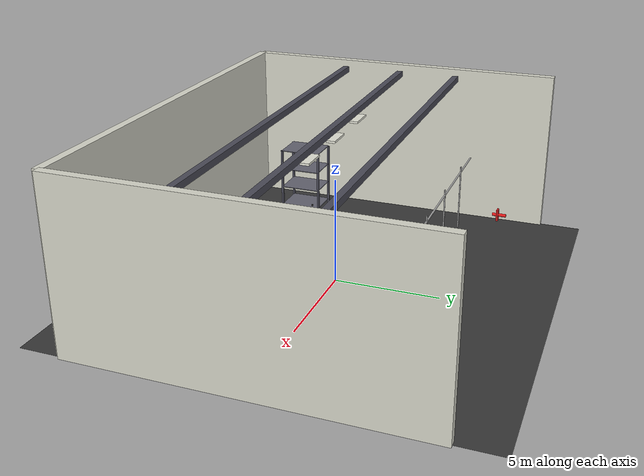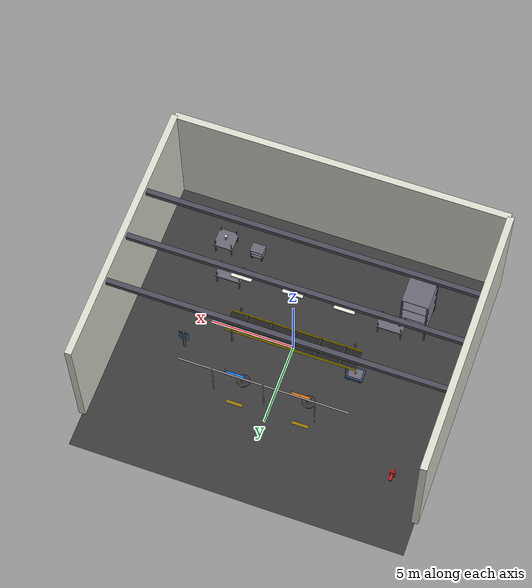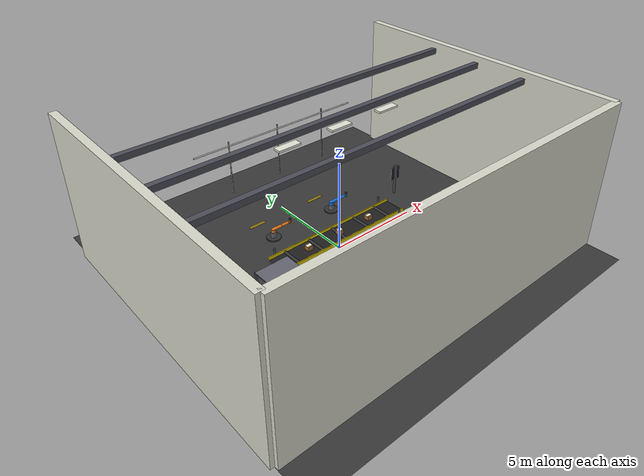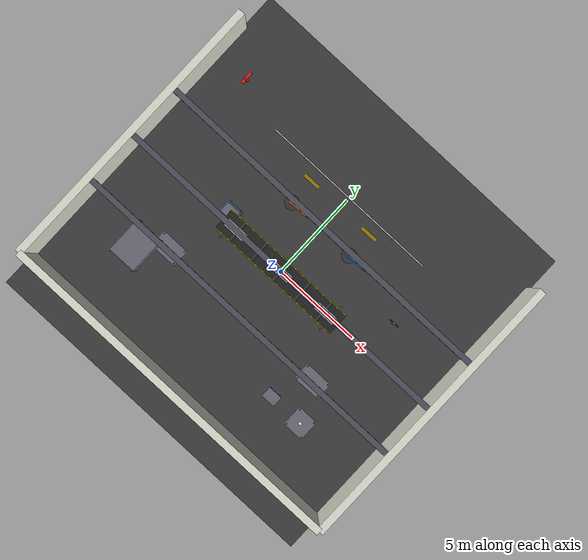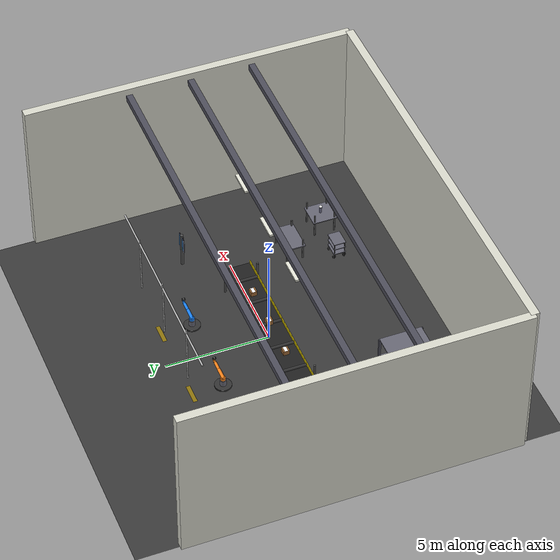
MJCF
<mujoco model="industrial_workshop">
  <compiler angle="radian" coordinate="local" inertiafromgeom="true"/>

  <option timestep="0.002" gravity="0 0 -9.81" iterations="50" solver="Newton" tolerance="1e-10"/>

  <size njmax="500" nconmax="100" nstack="600000"/>

  <visual>
    <map force="0.1" zfar="50"/>
    <rgba haze="0.15 0.25 0.35 1"/>
    <quality shadowsize="4096"/>
    <global offwidth="800" offheight="800"/>
  </visual>

  <asset>
    <!-- 纹理定义 -->
    <texture name="floor_texture" type="2d" builtin="checker" rgb1="0.2 0.2 0.2" rgb2="0.25 0.25 0.25" width="512" height="512" mark="cross" markrgb="0.8 0.8 0.8"/>
    <texture name="metal_texture" type="2d" builtin="flat" rgb1="0.4 0.4 0.45" width="512" height="512"/>
    <texture name="wall_texture" type="2d" builtin="flat" rgb1="0.85 0.85 0.8" width="512" height="512"/>
    <texture name="conveyor_texture" type="2d" builtin="checker" rgb1="0.1 0.1 0.1" rgb2="0.15 0.15 0.15" width="512" height="512"/>
    <texture name="robot_texture" type="2d" builtin="flat" rgb1="0.95 0.5 0.1" width="256" height="256"/>
    <texture name="warning_texture" type="2d" builtin="checker" rgb1="1 0.8 0" rgb2="0.1 0.1 0.1" width="128" height="128"/>
    <texture name="box_texture" type="2d" builtin="flat" rgb1="0.6 0.4 0.2" width="256" height="256"/>

    <!-- 材质定义 -->
    <material name="floor_material" texture="floor_texture" texrepeat="10 10" specular="0.3" shininess="0.5" reflectance="0.1"/>
    <material name="metal_material" texture="metal_texture" specular="0.8" shininess="0.7" reflectance="0.3"/>
    <material name="wall_material" texture="wall_texture" specular="0.1" shininess="0.1" reflectance="0"/>
    <material name="conveyor_material" texture="conveyor_texture" texrepeat="20 2" specular="0.2" shininess="0.3"/>
    <material name="robot_material" texture="robot_texture" specular="0.6" shininess="0.5" reflectance="0.2"/>
    <material name="warning_material" texture="warning_texture" texrepeat="2 2" specular="0.1" shininess="0.1"/>
    <material name="box_material" texture="box_texture" specular="0.2" shininess="0.2"/>
  </asset>

  <default>
    <joint limited="true" damping="0.5" armature="0.1"/>
    <geom contype="1" conaffinity="1" friction="1 0.5 0.5" density="1000" margin="0.001"/>
    <motor ctrllimited="true" ctrlrange="-1 1"/>
    <position ctrllimited="true"/>
  </default>

  <worldbody>
    <!-- 照明设置 -->
    <light directional="true" pos="0 0 10" dir="0 0 -1" diffuse="0.8 0.8 0.8" specular="0.3 0.3 0.3"/>
    <light directional="true" pos="5 5 8" dir="-1 -1 -2" diffuse="0.6 0.6 0.6" specular="0.2 0.2 0.2"/>
    <light directional="true" pos="-5 5 8" dir="1 -1 -2" diffuse="0.6 0.6 0.6" specular="0.2 0.2 0.2"/>

    <!-- 地面 -->
    <geom name="floor" type="plane" size="10 10 0.1" pos="0 0 0" material="floor_material" condim="3"/>

    <!-- 车间墙壁 -->
    <geom name="wall_back" type="box" size="10 0.2 4" pos="0 -8 4" material="wall_material"/>
    <geom name="wall_left" type="box" size="0.2 8 4" pos="-10 0 4" material="wall_material"/>
    <geom name="wall_right" type="box" size="0.2 8 4" pos="10 0 4" material="wall_material"/>

    <!-- 天花板钢梁 -->
    <geom name="ceiling_beam_1" type="box" size="10 0.15 0.15" pos="0 -3 7.5" rgba="0.3 0.3 0.35 1"/>
    <geom name="ceiling_beam_2" type="box" size="10 0.15 0.15" pos="0 0 7.5" rgba="0.3 0.3 0.35 1"/>
    <geom name="ceiling_beam_3" type="box" size="10 0.15 0.15" pos="0 3 7.5" rgba="0.3 0.3 0.35 1"/>

    <!-- ========== 主流水线系统 ========== -->
    <body name="conveyor_base" pos="0 0 0.85">
      <!-- 流水线支架 -->
      <geom name="conveyor_leg_1" type="cylinder" size="0.05 0.85" pos="-3.5 -0.8 -0.425" rgba="0.3 0.3 0.3 1"/>
      <geom name="conveyor_leg_2" type="cylinder" size="0.05 0.85" pos="-3.5 0.8 -0.425" rgba="0.3 0.3 0.3 1"/>
      <geom name="conveyor_leg_3" type="cylinder" size="0.05 0.85" pos="3.5 -0.8 -0.425" rgba="0.3 0.3 0.3 1"/>
      <geom name="conveyor_leg_4" type="cylinder" size="0.05 0.85" pos="3.5 0.8 -0.425" rgba="0.3 0.3 0.3 1"/>

      <!-- 流水线传送带 -->
      <geom name="conveyor_belt" type="box" size="4 0.6 0.05" pos="0 0 0" material="conveyor_material"/>

      <!-- 流水线侧边护栏 -->
      <geom name="conveyor_rail_1" type="box" size="4 0.02 0.1" pos="0 0.62 0.1" rgba="0.9 0.8 0 1"/>
      <geom name="conveyor_rail_2" type="box" size="4 0.02 0.1" pos="0 -0.62 0.1" rgba="0.9 0.8 0 1"/>

      <!-- 流水线滚轮 -->
      <geom name="conveyor_roller_1" type="cylinder" size="0.08 0.6" pos="-3 0 0.05" euler="1.5708 0 0" rgba="0.2 0.2 0.2 1"/>
      <geom name="conveyor_roller_2" type="cylinder" size="0.08 0.6" pos="-1.5 0 0.05" euler="1.5708 0 0" rgba="0.2 0.2 0.2 1"/>
      <geom name="conveyor_roller_3" type="cylinder" size="0.08 0.6" pos="0 0 0.05" euler="1.5708 0 0" rgba="0.2 0.2 0.2 1"/>
      <geom name="conveyor_roller_4" type="cylinder" size="0.08 0.6" pos="1.5 0 0.05" euler="1.5708 0 0" rgba="0.2 0.2 0.2 1"/>
      <geom name="conveyor_roller_5" type="cylinder" size="0.08 0.6" pos="3 0 0.05" euler="1.5708 0 0" rgba="0.2 0.2 0.2 1"/>
    </body>

    <!-- ========== 6轴工业机械臂 ========== -->
    <body name="robot_base" pos="-2 3 0">
      <!-- 机器人底座 -->
      <geom name="robot_platform" type="cylinder" size="0.4 0.05" rgba="0.2 0.2 0.2 1" mass="50"/>
      <geom name="robot_base_geom" type="cylinder" size="0.15 0.2" pos="0 0 0.15" material="metal_material" mass="20"/>

      <!-- 关节1: 基座旋转 -->
      <body name="link1" pos="0 0 0.35">
        <joint name="joint1" type="hinge" axis="0 0 1" range="-3.14159 3.14159" damping="2"/>
        <geom name="link1_geom" type="cylinder" size="0.12 0.15" rgba="0.95 0.5 0.1 1" mass="15"/>

        <!-- 关节2: 肩部 -->
        <body name="link2" pos="0 0 0.15" euler="0 0 0">
          <joint name="joint2" type="hinge" axis="0 1 0" range="-1.91986 1.91986" damping="2"/>
          <geom name="link2_geom" type="capsule" fromto="0 0 0 0.5 0 0" size="0.08" material="robot_material" mass="12"/>

          <!-- 关节3: 肘部 -->
          <body name="link3" pos="0.5 0 0">
            <joint name="joint3" type="hinge" axis="0 1 0" range="-1.91986 1.91986" damping="1.5"/>
            <geom name="link3_geom" type="capsule" fromto="0 0 0 0.45 0 0" size="0.07" rgba="0.95 0.5 0.1 1" mass="10"/>

            <!-- 关节4: 手腕旋转1 -->
            <body name="link4" pos="0.45 0 0">
              <joint name="joint4" type="hinge" axis="1 0 0" range="-3.14159 3.14159" damping="1"/>
              <geom name="link4_geom" type="capsule" fromto="0 0 0 0.15 0 0" size="0.055" material="robot_material" mass="5"/>

              <!-- 关节5: 手腕旋转2 -->
              <body name="link5" pos="0.15 0 0">
                <joint name="joint5" type="hinge" axis="0 1 0" range="-1.91986 1.91986" damping="1"/>
                <geom name="link5_geom" type="cylinder" size="0.05 0.08" rgba="0.95 0.5 0.1 1" mass="3"/>

                <!-- 关节6: 手腕旋转3 -->
                <body name="link6" pos="0 0 0.08">
                  <joint name="joint6" type="hinge" axis="0 0 1" range="-3.14159 3.14159" damping="0.5"/>
                  <geom name="link6_geom" type="cylinder" size="0.045 0.03" material="robot_material" mass="2"/>

                  <!-- 末端执行器 - 夹爪 -->
                  <body name="gripper_base" pos="0 0 0.08">
                    <geom name="gripper_base_geom" type="box" size="0.06 0.04 0.03" rgba="0.3 0.3 0.3 1" mass="1"/>

                    <!-- 左夹爪 -->
                    <body name="left_finger" pos="0 0.04 0">
                      <joint name="gripper_left" type="slide" axis="0 1 0" range="0 0.04" damping="0.3"/>
                      <geom name="left_finger_geom" type="box" size="0.04 0.01 0.05" pos="0 0.02 0" rgba="0.2 0.2 0.2 1" mass="0.3"/>
                      <geom name="left_finger_tip" type="box" size="0.04 0.005 0.02" pos="0 0.035 -0.04" rgba="0.4 0.4 0.4 1"/>
                    </body>

                    <!-- 右夹爪 -->
                    <body name="right_finger" pos="0 -0.04 0">
                      <joint name="gripper_right" type="slide" axis="0 -1 0" range="0 0.04" damping="0.3"/>
                      <geom name="right_finger_geom" type="box" size="0.04 0.01 0.05" pos="0 -0.02 0" rgba="0.2 0.2 0.2 1" mass="0.3"/>
                      <geom name="right_finger_tip" type="box" size="0.04 0.005 0.02" pos="0 -0.035 -0.04" rgba="0.4 0.4 0.4 1"/>
                    </body>
                  </body>
                </body>
              </body>
            </body>
          </body>
        </body>
      </body>
    </body>

    <!-- ========== 第二台机械臂 ========== -->
    <body name="robot2_base" pos="2 3 0">
      <geom name="robot2_platform" type="cylinder" size="0.4 0.05" rgba="0.2 0.2 0.2 1" mass="50"/>
      <geom name="robot2_base_geom" type="cylinder" size="0.15 0.2" pos="0 0 0.15" material="metal_material" mass="20"/>

      <body name="robot2_link1" pos="0 0 0.35">
        <joint name="robot2_joint1" type="hinge" axis="0 0 1" range="-3.14159 3.14159" damping="2"/>
        <geom name="robot2_link1_geom" type="cylinder" size="0.12 0.15" rgba="0.1 0.5 0.95 1" mass="15"/>

        <body name="robot2_link2" pos="0 0 0.15">
          <joint name="robot2_joint2" type="hinge" axis="0 1 0" range="-1.91986 1.91986" damping="2"/>
          <geom name="robot2_link2_geom" type="capsule" fromto="0 0 0 0.5 0 0" size="0.08" rgba="0.1 0.5 0.95 1" mass="12"/>

          <body name="robot2_link3" pos="0.5 0 0">
            <joint name="robot2_joint3" type="hinge" axis="0 1 0" range="-1.91986 1.91986" damping="1.5"/>
            <geom name="robot2_link3_geom" type="capsule" fromto="0 0 0 0.45 0 0" size="0.07" rgba="0.1 0.5 0.95 1" mass="10"/>

            <body name="robot2_link4" pos="0.45 0 0">
              <joint name="robot2_joint4" type="hinge" axis="1 0 0" range="-3.14159 3.14159" damping="1"/>
              <geom name="robot2_link4_geom" type="capsule" fromto="0 0 0 0.15 0 0" size="0.055" rgba="0.1 0.5 0.95 1" mass="5"/>

              <body name="robot2_link5" pos="0.15 0 0">
                <joint name="robot2_joint5" type="hinge" axis="0 1 0" range="-1.91986 1.91986" damping="1"/>
                <geom name="robot2_link5_geom" type="cylinder" size="0.05 0.08" rgba="0.1 0.5 0.95 1" mass="3"/>

                <body name="robot2_link6" pos="0 0 0.08">
                  <joint name="robot2_joint6" type="hinge" axis="0 0 1" range="-3.14159 3.14159" damping="0.5"/>
                  <geom name="robot2_link6_geom" type="cylinder" size="0.045 0.03" rgba="0.1 0.5 0.95 1" mass="2"/>

                  <body name="robot2_gripper_base" pos="0 0 0.08">
                    <geom name="robot2_gripper_base_geom" type="box" size="0.06 0.04 0.03" rgba="0.3 0.3 0.3 1" mass="1"/>

                    <body name="robot2_left_finger" pos="0 0.04 0">
                      <joint name="robot2_gripper_left" type="slide" axis="0 1 0" range="0 0.04" damping="0.3"/>
                      <geom name="robot2_left_finger_geom" type="box" size="0.04 0.01 0.05" pos="0 0.02 0" rgba="0.2 0.2 0.2 1" mass="0.3"/>
                      <geom name="robot2_left_finger_tip" type="box" size="0.04 0.005 0.02" pos="0 0.035 -0.04" rgba="0.4 0.4 0.4 1"/>
                    </body>

                    <body name="robot2_right_finger" pos="0 -0.04 0">
                      <joint name="robot2_gripper_right" type="slide" axis="0 -1 0" range="0 0.04" damping="0.3"/>
                      <geom name="robot2_right_finger_geom" type="box" size="0.04 0.01 0.05" pos="0 -0.02 0" rgba="0.2 0.2 0.2 1" mass="0.3"/>
                      <geom name="robot2_right_finger_tip" type="box" size="0.04 0.005 0.02" pos="0 -0.035 -0.04" rgba="0.4 0.4 0.4 1"/>
                    </body>
                  </body>
                </body>
              </body>
            </body>
          </body>
        </body>
      </body>
    </body>

    <!-- ========== 工作台 ========== -->
    <body name="worktable_1" pos="-5 -3 0">
      <geom name="worktable1_leg1" type="cylinder" size="0.04 0.75" pos="-0.7 -0.4 0.375" rgba="0.3 0.3 0.3 1"/>
      <geom name="worktable1_leg2" type="cylinder" size="0.04 0.75" pos="-0.7 0.4 0.375" rgba="0.3 0.3 0.3 1"/>
      <geom name="worktable1_leg3" type="cylinder" size="0.04 0.75" pos="0.7 -0.4 0.375" rgba="0.3 0.3 0.3 1"/>
      <geom name="worktable1_leg4" type="cylinder" size="0.04 0.75" pos="0.7 0.4 0.375" rgba="0.3 0.3 0.3 1"/>
      <geom name="worktable1_top" type="box" size="0.8 0.5 0.03" pos="0 0 0.78" material="metal_material"/>
    </body>

    <body name="worktable_2" pos="5 -3 0">
      <geom name="worktable2_leg1" type="cylinder" size="0.04 0.75" pos="-0.7 -0.4 0.375" rgba="0.3 0.3 0.3 1"/>
      <geom name="worktable2_leg2" type="cylinder" size="0.04 0.75" pos="-0.7 0.4 0.375" rgba="0.3 0.3 0.3 1"/>
      <geom name="worktable2_leg3" type="cylinder" size="0.04 0.75" pos="0.7 -0.4 0.375" rgba="0.3 0.3 0.3 1"/>
      <geom name="worktable2_leg4" type="cylinder" size="0.04 0.75" pos="0.7 0.4 0.375" rgba="0.3 0.3 0.3 1"/>
      <geom name="worktable2_top" type="box" size="0.8 0.5 0.03" pos="0 0 0.78" material="metal_material"/>
    </body>

    <!-- ========== 货架系统 ========== -->
    <body name="storage_rack" pos="-7 -5 0">
      <!-- 货架立柱 -->
      <geom name="rack_post1" type="box" size="0.05 0.05 2" pos="0 0 2" rgba="0.3 0.3 0.35 1"/>
      <geom name="rack_post2" type="box" size="0.05 0.05 2" pos="0 2 2" rgba="0.3 0.3 0.35 1"/>
      <geom name="rack_post3" type="box" size="0.05 0.05 2" pos="1.5 0 2" rgba="0.3 0.3 0.35 1"/>
      <geom name="rack_post4" type="box" size="0.05 0.05 2" pos="1.5 2 2" rgba="0.3 0.3 0.35 1"/>

      <!-- 货架层板 -->
      <geom name="rack_shelf1" type="box" size="0.8 1 0.02" pos="0.75 1 1" material="metal_material"/>
      <geom name="rack_shelf2" type="box" size="0.8 1 0.02" pos="0.75 1 2" material="metal_material"/>
      <geom name="rack_shelf3" type="box" size="0.8 1 0.02" pos="0.75 1 3" material="metal_material"/>
      <geom name="rack_shelf4" type="box" size="0.8 1 0.02" pos="0.75 1 4" material="metal_material"/>
    </body>

    <!-- ========== 流水线上的物料箱 ========== -->
    <body name="box1" pos="-2 0 1.05">
      <freejoint/>
      <geom name="box1_geom" type="box" size="0.15 0.15 0.12" material="box_material" mass="2"/>
      <geom name="box1_label" type="box" size="0.151 0.08 0.001" pos="0 0 0.121" rgba="1 1 1 1"/>
    </body>

    <body name="box2" pos="0 0 1.05">
      <freejoint/>
      <geom name="box2_geom" type="box" size="0.15 0.15 0.12" material="box_material" mass="2"/>
      <geom name="box2_label" type="box" size="0.151 0.08 0.001" pos="0 0 0.121" rgba="1 1 1 1"/>
    </body>

    <body name="box3" pos="2 0 1.05">
      <freejoint/>
      <geom name="box3_geom" type="box" size="0.15 0.15 0.12" material="box_material" mass="2"/>
      <geom name="box3_label" type="box" size="0.151 0.08 0.001" pos="0 0 0.121" rgba="1 1 1 1"/>
    </body>

    <!-- ========== 安全警示标识 ========== -->
    <geom name="warning_strip_1" type="box" size="0.5 0.1 0.001" pos="-2 4.5 0.001" material="warning_material"/>
    <geom name="warning_strip_2" type="box" size="0.5 0.1 0.001" pos="2 4.5 0.001" material="warning_material"/>

    <!-- ========== 控制面板 ========== -->
    <body name="control_panel" pos="6 2 0">
      <geom name="panel_stand" type="cylinder" size="0.08 1.2" pos="0 0 0.6" rgba="0.3 0.3 0.3 1"/>
      <geom name="panel_screen" type="box" size="0.3 0.02 0.4" pos="0 0 1.3" rgba="0.1 0.1 0.15 1"/>
      <geom name="panel_display" type="box" size="0.28 0.01 0.35" pos="0 0.021 1.32" rgba="0.2 0.4 0.6 1"/>
      <geom name="panel_button1" type="cylinder" size="0.02 0.01" pos="-0.1 0.03 1" rgba="0 1 0 1" euler="1.5708 0 0"/>
      <geom name="panel_button2" type="cylinder" size="0.02 0.01" pos="0 0.03 1" rgba="1 1 0 1" euler="1.5708 0 0"/>
      <geom name="panel_button3" type="cylinder" size="0.02 0.01" pos="0.1 0.03 1" rgba="1 0 0 1" euler="1.5708 0 0"/>
    </body>

    <!-- ========== 工具车 ========== -->
    <body name="tool_cart" pos="4 -5 0">
      <!-- 车轮 -->
      <geom name="cart_wheel1" type="cylinder" size="0.08 0.03" pos="-0.3 -0.25 0.08" rgba="0.2 0.2 0.2 1" euler="0 1.5708 0"/>
      <geom name="cart_wheel2" type="cylinder" size="0.08 0.03" pos="-0.3 0.25 0.08" rgba="0.2 0.2 0.2 1" euler="0 1.5708 0"/>
      <geom name="cart_wheel3" type="cylinder" size="0.08 0.03" pos="0.3 -0.25 0.08" rgba="0.2 0.2 0.2 1" euler="0 1.5708 0"/>
      <geom name="cart_wheel4" type="cylinder" size="0.08 0.03" pos="0.3 0.25 0.08" rgba="0.2 0.2 0.2 1" euler="0 1.5708 0"/>

      <!-- 车体 -->
      <geom name="cart_shelf1" type="box" size="0.4 0.3 0.02" pos="0 0 0.3" material="metal_material"/>
      <geom name="cart_shelf2" type="box" size="0.4 0.3 0.02" pos="0 0 0.6" material="metal_material"/>
      <geom name="cart_shelf3" type="box" size="0.4 0.3 0.02" pos="0 0 0.9" material="metal_material"/>

      <!-- 车体支柱 -->
      <geom name="cart_post1" type="cylinder" size="0.02 0.45" pos="-0.35 -0.25 0.45" rgba="0.3 0.3 0.3 1"/>
      <geom name="cart_post2" type="cylinder" size="0.02 0.45" pos="-0.35 0.25 0.45" rgba="0.3 0.3 0.3 1"/>
      <geom name="cart_post3" type="cylinder" size="0.02 0.45" pos="0.35 -0.25 0.45" rgba="0.3 0.3 0.3 1"/>
      <geom name="cart_post4" type="cylinder" size="0.02 0.45" pos="0.35 0.25 0.45" rgba="0.3 0.3 0.3 1"/>

      <!-- 工具车上的工具 -->
      <geom name="tool1" type="cylinder" size="0.02 0.1" pos="-0.15 0 0.35" rgba="0.6 0.6 0.6 1"/>
      <geom name="tool2" type="box" size="0.08 0.04 0.02" pos="0 0 0.35" rgba="0.7 0.5 0.2 1"/>
      <geom name="tool3" type="cylinder" size="0.015 0.08" pos="0.15 0 0.35" rgba="0.5 0.5 0.5 1"/>
    </body>

    <!-- ========== AGV小车 ========== -->
    <body name="agv_vehicle" pos="-4 0.5 0">
      <!-- AGV底盘 -->
      <geom name="agv_body" type="box" size="0.5 0.4 0.1" pos="0 0 0.15" rgba="0.2 0.3 0.4 1" mass="30"/>

      <!-- AGV轮子 -->
      <geom name="agv_wheel1" type="cylinder" size="0.1 0.04" pos="-0.35 -0.35 0.1" rgba="0.1 0.1 0.1 1" euler="0 1.5708 0"/>
      <geom name="agv_wheel2" type="cylinder" size="0.1 0.04" pos="-0.35 0.35 0.1" rgba="0.1 0.1 0.1 1" euler="0 1.5708 0"/>
      <geom name="agv_wheel3" type="cylinder" size="0.1 0.04" pos="0.35 -0.35 0.1" rgba="0.1 0.1 0.1 1" euler="0 1.5708 0"/>
      <geom name="agv_wheel4" type="cylinder" size="0.1 0.04" pos="0.35 0.35 0.1" rgba="0.1 0.1 0.1 1" euler="0 1.5708 0"/>

      <!-- AGV导航传感器 -->
      <geom name="agv_sensor" type="cylinder" size="0.05 0.08" pos="0 0 0.33" rgba="0.8 0.2 0.2 1"/>

      <!-- AGV货物托盘 -->
      <geom name="agv_pallet" type="box" size="0.4 0.3 0.02" pos="0 0 0.27" material="metal_material"/>
    </body>

    <!-- ========== 空气管道系统 ========== -->
    <geom name="air_pipe_main" type="cylinder" size="0.04 5" pos="0 5 5" rgba="0.7 0.7 0.7 1" euler="0 1.5708 0"/>
    <geom name="air_pipe_branch1" type="cylinder" size="0.03 1.5" pos="-3 5 3.75" rgba="0.7 0.7 0.7 1"/>
    <geom name="air_pipe_branch2" type="cylinder" size="0.03 1.5" pos="0 5 3.75" rgba="0.7 0.7 0.7 1"/>
    <geom name="air_pipe_branch3" type="cylinder" size="0.03 1.5" pos="3 5 3.75" rgba="0.7 0.7 0.7 1"/>

    <!-- ========== 照明灯具 ========== -->
    <geom name="ceiling_light1" type="box" size="0.6 0.2 0.05" pos="-3 0 7" rgba="0.9 0.9 0.85 1"/>
    <geom name="ceiling_light2" type="box" size="0.6 0.2 0.05" pos="0 0 7" rgba="0.9 0.9 0.85 1"/>
    <geom name="ceiling_light3" type="box" size="0.6 0.2 0.05" pos="3 0 7" rgba="0.9 0.9 0.85 1"/>

    <!-- ========== 消防设备 ========== -->
    <body name="fire_extinguisher" pos="-8 6 0">
      <geom name="extinguisher_bracket" type="box" size="0.15 0.05 0.3" pos="0 0 1" rgba="0.8 0.1 0.1 1"/>
      <geom name="extinguisher_body" type="cylinder" size="0.08 0.35" pos="0 0.08 1" rgba="0.9 0.1 0.1 1" euler="1.5708 0 0"/>
    </body>

    <!-- ========== 质检工位 ========== -->
    <body name="inspection_station" pos="6 -5 0">
      <geom name="inspection_table" type="box" size="0.6 0.6 0.02" pos="0 0 0.8" material="metal_material"/>
      <geom name="inspection_leg1" type="cylinder" size="0.04 0.8" pos="-0.5 -0.5 0.4" rgba="0.3 0.3 0.3 1"/>
      <geom name="inspection_leg2" type="cylinder" size="0.04 0.8" pos="-0.5 0.5 0.4" rgba="0.3 0.3 0.3 1"/>
      <geom name="inspection_leg3" type="cylinder" size="0.04 0.8" pos="0.5 -0.5 0.4" rgba="0.3 0.3 0.3 1"/>
      <geom name="inspection_leg4" type="cylinder" size="0.04 0.8" pos="0.5 0.5 0.4" rgba="0.3 0.3 0.3 1"/>

      <!-- 质检设备 -->
      <geom name="inspection_microscope" type="cylinder" size="0.06 0.15" pos="0 0 1" rgba="0.4 0.4 0.5 1"/>
      <geom name="inspection_light" type="cylinder" size="0.08 0.02" pos="0 0 1.2" rgba="0.9 0.9 0.9 1"/>
    </body>

    <!-- ========== 相机视角点 ========== -->
    <camera name="overview" pos="8 -8 6" xyaxes="1 1 0 -1 1 2" mode="fixed"/>
    <camera name="robot_view" pos="-2 5 2" xyaxes="1 0 0 0 0.7071 0.7071" mode="fixed"/>
    <camera name="conveyor_view" pos="0 -3 3" xyaxes="1 0 0 0 0.8 0.6" mode="fixed"/>
    <camera name="tracking" pos="-5 -5 4" xyaxes="0.7071 0.7071 0 -0.5 0.5 0.7071" mode="targetbody" target="box1"/>
  </worldbody>

  <actuator>
    <!-- 第一台机械臂的执行器 -->
    <position name="joint1_actuator" joint="joint1" kp="200" ctrlrange="-3.14159 3.14159"/>
    <position name="joint2_actuator" joint="joint2" kp="200" ctrlrange="-1.91986 1.91986"/>
    <position name="joint3_actuator" joint="joint3" kp="150" ctrlrange="-1.91986 1.91986"/>
    <position name="joint4_actuator" joint="joint4" kp="100" ctrlrange="-3.14159 3.14159"/>
    <position name="joint5_actuator" joint="joint5" kp="100" ctrlrange="-1.91986 1.91986"/>
    <position name="joint6_actuator" joint="joint6" kp="50" ctrlrange="-3.14159 3.14159"/>
    <position name="gripper_left_actuator" joint="gripper_left" kp="50" ctrlrange="0 0.04"/>
    <position name="gripper_right_actuator" joint="gripper_right" kp="50" ctrlrange="0 0.04"/>

    <!-- 第二台机械臂的执行器 -->
    <position name="robot2_joint1_actuator" joint="robot2_joint1" kp="200" ctrlrange="-3.14159 3.14159"/>
    <position name="robot2_joint2_actuator" joint="robot2_joint2" kp="200" ctrlrange="-1.91986 1.91986"/>
    <position name="robot2_joint3_actuator" joint="robot2_joint3" kp="150" ctrlrange="-1.91986 1.91986"/>
    <position name="robot2_joint4_actuator" joint="robot2_joint4" kp="100" ctrlrange="-3.14159 3.14159"/>
    <position name="robot2_joint5_actuator" joint="robot2_joint5" kp="100" ctrlrange="-1.91986 1.91986"/>
    <position name="robot2_joint6_actuator" joint="robot2_joint6" kp="50" ctrlrange="-3.14159 3.14159"/>
    <position name="robot2_gripper_left_actuator" joint="robot2_gripper_left" kp="50" ctrlrange="0 0.04"/>
    <position name="robot2_gripper_right_actuator" joint="robot2_gripper_right" kp="50" ctrlrange="0 0.04"/>
  </actuator>

  <sensor>
    <!-- 机械臂关节位置传感器 -->
    <jointpos name="joint1_pos" joint="joint1"/>
    <jointpos name="joint2_pos" joint="joint2"/>
    <jointpos name="joint3_pos" joint="joint3"/>
    <jointpos name="joint4_pos" joint="joint4"/>
    <jointpos name="joint5_pos" joint="joint5"/>
    <jointpos name="joint6_pos" joint="joint6"/>

    <!-- 机械臂关节速度传感器 -->
    <jointvel name="joint1_vel" joint="joint1"/>
    <jointvel name="joint2_vel" joint="joint2"/>
    <jointvel name="joint3_vel" joint="joint3"/>
    <jointvel name="joint4_vel" joint="joint4"/>
    <jointvel name="joint5_vel" joint="joint5"/>
    <jointvel name="joint6_vel" joint="joint6"/>

    <!-- 末端执行器传感器 -->
    <framepos name="gripper_pos" objtype="body" objname="gripper_base"/>
    <framequat name="gripper_quat" objtype="body" objname="gripper_base"/>

    <!-- 夹爪力传感器 -->
    <jointpos name="gripper_left_pos" joint="gripper_left"/>
    <jointpos name="gripper_right_pos" joint="gripper_right"/>

    <!-- 物料箱传感器 -->
    <framepos name="box1_pos" objtype="body" objname="box1"/>
    <framepos name="box2_pos" objtype="body" objname="box2"/>
    <framepos name="box3_pos" objtype="body" objname="box3"/>
  </sensor>
</mujoco>
